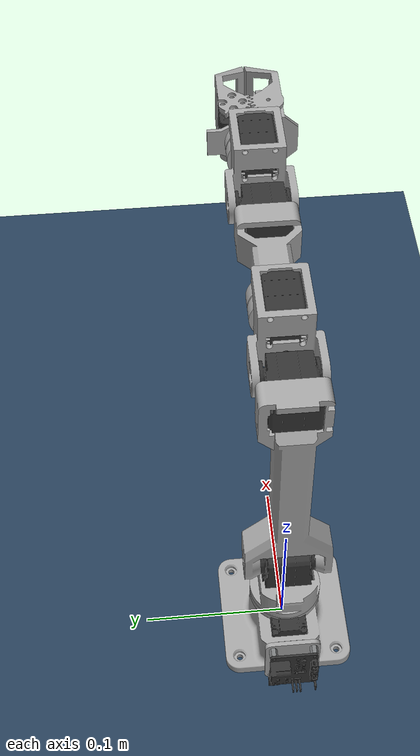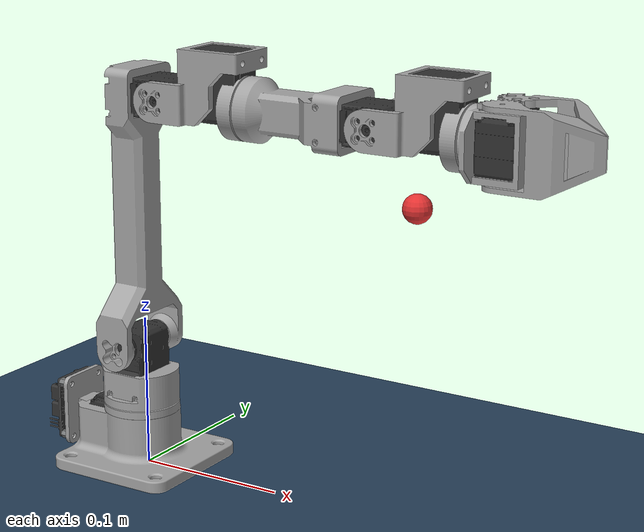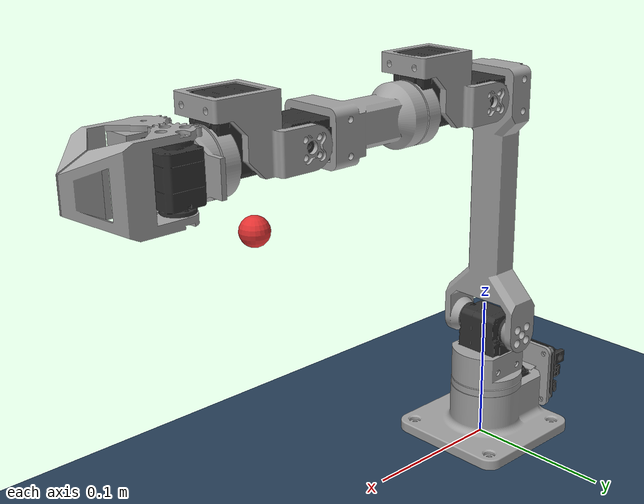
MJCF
<mujoco model="scene">
    <include file="robot.xml" />

    <visual>
        <headlight diffuse="0.6 0.6 0.6" ambient="0.3 0.3 0.3" specular="0 0 0" />
        <rgba haze="0.15 0.25 0.35 1" />
        <global azimuth="160" elevation="-20" />
    </visual>

    <asset>
        <texture type="skybox" builtin="gradient" rgb1="0.3 0.5 0.7" rgb2="0 0 0" width="512"
            height="3072" />
        <texture type="2d" name="groundplane" builtin="checker" mark="edge" rgb1="0.2 0.3 0.4"
            rgb2="0.1 0.2 0.3"
            markrgb="0.8 0.8 0.8" width="300" height="300" />
        <material name="groundplane" texture="groundplane" texuniform="true" texrepeat="5 5"
            reflectance="0.2" />
    </asset>

    <worldbody>
        <light pos="0 0 3.5" dir="0 0 -1" directional="true" />
        <geom name="floor" size="0 0 0.05" pos="0 0 0" type="plane" material="groundplane" />

        <!-- Target -->
		<body name="target" pos="0.2 0.0 0.2" gravcomp="1">
			<joint armature="0" axis="1 0 0" damping="0" limited="true" name="target_x" pos="0 0 0" range="-.27 .27" ref="0" stiffness="0" type="slide"/>
			<joint armature="0" axis="0 1 0" damping="0" limited="true" name="target_y" pos="0 0 0" range="-.27 .27" ref="0" stiffness="0" type="slide"/>
            <joint armature="0" axis="0 0 1" damping="0" limited="true" name="target_z" pos="0 0 0" range="-.27 .27" ref="0" stiffness="0" type="slide"/>
			<geom conaffinity="0" contype="0" name="target" pos="0 0 0" rgba="0.9 0.2 0.2 1" size=".009" type="sphere"/>
		</body>
    </worldbody>
</mujoco>

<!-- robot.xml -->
<!-- Generated using onshape-to-robot -->
<!-- Onshape https://cad.onshape.com/documents/5ed8cfb61595789d024e1257/w/f4ea8e71bb659e73bc33b59e/e/9b60ff3bf030ff376f436c83 -->
<mujoco model="apto_arm">
  <compiler angle="radian" meshdir="meshes" autolimits="true"/>
  <default>
    <default class="apto_arm">
      <joint frictionloss="0.1" armature="0.005"/>
      <position kp="50" dampratio="1"/>
      <default class="visual">
        <geom type="mesh" contype="0" conaffinity="0" group="2"/>
      </default>
      <default class="collision">
        <geom group="3"/>
      </default>
    </default>
  </default>
  <worldbody>
    <!-- Link base -->
    <body name="base" pos="0 0 0" quat="1 0 0 0" childclass="apto_arm">
      <inertial pos="-0.0103642 2.52464e-07 0.017584" mass="0.203812" fullinertia="0.000103332 0.000141349 0.000178463 -7.28984e-09 1.49851e-05 -6.94405e-09"/>
      <!-- Part abstandzbolzen_stahl_verzinkt_i_i_m2_5___ettinger___5_02_061__m2_5x6 -->
      <geom type="mesh" class="visual" pos="-0.0615496 0.014 0.0483" quat="0.707107 0 0 -0.707107" mesh="abstandzbolzen_stahl_verzinkt_i_i_m2_5___ettinger___5_02_061__m2_5x6" material="abstandzbolzen_stahl_verzinkt_i_i_m2_5___ettinger___5_02_061__m2_5x6_material"/>
      <geom type="mesh" class="collision" pos="-0.0615496 0.014 0.0483" quat="0.707107 0 0 -0.707107" mesh="abstandzbolzen_stahl_verzinkt_i_i_m2_5___ettinger___5_02_061__m2_5x6" material="abstandzbolzen_stahl_verzinkt_i_i_m2_5___ettinger___5_02_061__m2_5x6_material"/>
      <!-- Part simplified_part -->
      <geom type="mesh" class="visual" pos="-0.0300996 1.04083e-17 0.0336" quat="0 0 -0.707107 -0.707107" mesh="simplified_part" material="simplified_part_material"/>
      <geom type="mesh" class="collision" pos="-0.0300996 1.04083e-17 0.0336" quat="0 0 -0.707107 -0.707107" mesh="simplified_part" material="simplified_part_material"/>
      <!-- Part pcbframe -->
      <geom type="mesh" class="visual" pos="-0.0525496 0.019 0.0063" quat="0.707107 0 0 -0.707107" mesh="pcbframe" material="pcbframe_material"/>
      <geom type="mesh" class="collision" pos="-0.0525496 0.019 0.0063" quat="0.707107 0 0 -0.707107" mesh="pcbframe" material="pcbframe_material"/>
      <!-- Part basethrust -->
      <geom type="mesh" class="visual" pos="-0.00459957 1.04083e-17 0.0375" quat="1 -0 -0 -0" mesh="basethrust" material="basethrust_material"/>
      <geom type="mesh" class="collision" pos="-0.00459957 1.04083e-17 0.0375" quat="1 -0 -0 -0" mesh="basethrust" material="basethrust_material"/>
      <!-- Part simplified_part_2 -->
      <geom type="mesh" class="visual" pos="-0.0631496 0.0165 0.0508" quat="5.19201e-17 -0.707107 0 0.707107" mesh="simplified_part__2" material="simplified_part__2_material"/>
      <geom type="mesh" class="collision" pos="-0.0631496 0.0165 0.0508" quat="5.19201e-17 -0.707107 0 0.707107" mesh="simplified_part__2" material="simplified_part__2_material"/>
      <!-- Part abstandzbolzen_stahl_verzinkt_i_i_m2_5___ettinger___5_02_061__m2_5x6_2 -->
      <geom type="mesh" class="visual" pos="-0.0615496 0.014 0.0113" quat="0.707107 0 0 -0.707107" mesh="abstandzbolzen_stahl_verzinkt_i_i_m2_5___ettinger___5_02_061__m2_5x6" material="abstandzbolzen_stahl_verzinkt_i_i_m2_5___ettinger___5_02_061__m2_5x6_material"/>
      <geom type="mesh" class="collision" pos="-0.0615496 0.014 0.0113" quat="0.707107 0 0 -0.707107" mesh="abstandzbolzen_stahl_verzinkt_i_i_m2_5___ettinger___5_02_061__m2_5x6" material="abstandzbolzen_stahl_verzinkt_i_i_m2_5___ettinger___5_02_061__m2_5x6_material"/>
      <!-- Part abstandzbolzen_stahl_verzinkt_i_i_m2_5___ettinger___5_02_061__m2_5x6_3 -->
      <geom type="mesh" class="visual" pos="-0.0615496 -0.014 0.0483" quat="0.707107 0 0 -0.707107" mesh="abstandzbolzen_stahl_verzinkt_i_i_m2_5___ettinger___5_02_061__m2_5x6" material="abstandzbolzen_stahl_verzinkt_i_i_m2_5___ettinger___5_02_061__m2_5x6_material"/>
      <geom type="mesh" class="collision" pos="-0.0615496 -0.014 0.0483" quat="0.707107 0 0 -0.707107" mesh="abstandzbolzen_stahl_verzinkt_i_i_m2_5___ettinger___5_02_061__m2_5x6" material="abstandzbolzen_stahl_verzinkt_i_i_m2_5___ettinger___5_02_061__m2_5x6_material"/>
      <!-- Part base -->
      <geom type="mesh" class="visual" pos="-0.0480496 -0.045 0" quat="1 0 0 0" mesh="base" material="base_material"/>
      <geom type="mesh" class="collision" pos="-0.0480496 -0.045 0" quat="1 0 0 0" mesh="base" material="base_material"/>
      <!-- Part abstandzbolzen_stahl_verzinkt_i_i_m2_5___ettinger___5_02_061__m2_5x6_4 -->
      <geom type="mesh" class="visual" pos="-0.0615496 -0.014 0.0113" quat="0.707107 0 0 -0.707107" mesh="abstandzbolzen_stahl_verzinkt_i_i_m2_5___ettinger___5_02_061__m2_5x6" material="abstandzbolzen_stahl_verzinkt_i_i_m2_5___ettinger___5_02_061__m2_5x6_material"/>
      <geom type="mesh" class="collision" pos="-0.0615496 -0.014 0.0113" quat="0.707107 0 0 -0.707107" mesh="abstandzbolzen_stahl_verzinkt_i_i_m2_5___ettinger___5_02_061__m2_5x6" material="abstandzbolzen_stahl_verzinkt_i_i_m2_5___ettinger___5_02_061__m2_5x6_material"/>
      <!-- Link baseframe -->
      <body name="baseframe" pos="-0.00459957 1.12999e-17 0.0433" quat="0 1 0 0">
        <!-- Joint from base to baseframe -->
        <joint axis="0 0 1" name="1" type="hinge" range="-1.3962634015954636 1.3962634015954636"/>
        <inertial pos="-0.000226919 0.000173064 -0.0212401" mass="0.0858067" fullinertia="2.59297e-05 2.72242e-05 1.95017e-05 -8.51563e-10 -1.54207e-07 4.58121e-08"/>
        <!-- Part simplified_part_3 -->
        <geom type="mesh" class="visual" pos="-2.42861e-17 -0.009025 -0.0145" quat="9.62066e-17 0.707107 -0 0.707107" mesh="simplified_part__3" material="simplified_part__3_material"/>
        <geom type="mesh" class="collision" pos="-2.42861e-17 -0.009025 -0.0145" quat="9.62066e-17 0.707107 -0 0.707107" mesh="simplified_part__3" material="simplified_part__3_material"/>
        <!-- Part baseframe -->
        <geom type="mesh" class="visual" pos="0 2.44929e-19 0" quat="0 1 0 0" mesh="baseframe" material="baseframe_material"/>
        <geom type="mesh" class="collision" pos="0 2.44929e-19 0" quat="0 1 0 0" mesh="baseframe" material="baseframe_material"/>
        <!-- Link link1 -->
        <body name="link1" pos="-2.68882e-17 -0.019 -0.04" quat="0.5 -0.5 0.5 0.5">
          <!-- Joint from baseframe to link1 -->
          <joint axis="0 0 1" name="2" type="hinge" range="-1.3962634015954636 1.3962634015954636"/>
          <inertial pos="0.107494 -0.00536826 0.018862" mass="0.190598" fullinertia="5.31201e-05 0.000640799 0.00064269 5.90405e-05 -9.58969e-07 2.5701e-07"/>
          <!-- Part link1 -->
          <geom type="mesh" class="visual" pos="0.0414998 -0.0125 0.0315" quat="0.707107 -0.707107 0 0" mesh="link1" material="link1_material"/>
          <geom type="mesh" class="collision" pos="0.0414998 -0.0125 0.0315" quat="0.707107 -0.707107 0 0" mesh="link1" material="link1_material"/>
          <!-- Part simplified_part_4 -->
          <geom type="mesh" class="visual" pos="0.16525 -0.00475 0.009975" quat="0.5 -0.5 -0.5 0.5" mesh="simplified_part__3" material="simplified_part__3_material"/>
          <geom type="mesh" class="collision" pos="0.16525 -0.00475 0.009975" quat="0.5 -0.5 -0.5 0.5" mesh="simplified_part__3" material="simplified_part__3_material"/>
          <!-- Link mframe -->
          <body name="mframe" pos="0.16525 -0.03025 0.00025" quat="0.707107 -0 1.60723e-16 -0.707107">
            <!-- Joint from link1 to mframe -->
            <joint axis="0 0 1" name="3" type="hinge" range="-1.3962634015954636 1.3962634015954636"/>
            <inertial pos="0.035841 0.00947294 0.0187521" mass="0.092061" fullinertia="2.92644e-05 3.04887e-05 3.62e-05 -1.75052e-06 1.77599e-09 -2.52917e-09"/>
            <!-- Part mframe -->
            <geom type="mesh" class="visual" pos="0.0225 -0.0125 0.0425" quat="0.707107 -0.707107 0 5.04921e-62" mesh="mframe" material="mframe_material"/>
            <geom type="mesh" class="collision" pos="0.0225 -0.0125 0.0425" quat="0.707107 -0.707107 0 5.04921e-62" mesh="mframe" material="mframe_material"/>
            <!-- Part mthrust -->
            <geom type="mesh" class="visual" pos="0.04675 -0.0018 0.01875" quat="9.0189e-29 -0.707107 -0 -0.707107" mesh="mthrust" material="mthrust_material"/>
            <geom type="mesh" class="collision" pos="0.04675 -0.0018 0.01875" quat="9.0189e-29 -0.707107 -0 -0.707107" mesh="mthrust" material="mthrust_material"/>
            <!-- Part simplified_part_5 -->
            <geom type="mesh" class="visual" pos="0.04835 0.0237 0.01875" quat="4.32978e-17 -0.707107 -0.707107 4.32978e-17" mesh="simplified_part" material="simplified_part_material"/>
            <geom type="mesh" class="collision" pos="0.04835 0.0237 0.01875" quat="4.32978e-17 -0.707107 -0.707107 4.32978e-17" mesh="simplified_part" material="simplified_part_material"/>
            <!-- Link link2 -->
            <body name="link2" pos="0.05795 -0.0018 0.01875" quat="1.55532e-28 -0.707107 0 0.707107">
              <!-- Joint from mframe to link2 -->
              <joint axis="0 0 1" name="4" type="hinge" range="-1.3962634015954636 1.3962634015954636"/>
              <inertial pos="0.000330862 -7.32053e-05 -0.0605309" mass="0.0963563" fullinertia="9.44484e-05 9.80461e-05 1.88413e-05 -1.33669e-09 4.75465e-07 -1.37026e-07"/>
              <!-- Part link2 -->
              <geom type="mesh" class="visual" pos="0 0 0" quat="0.5 0.5 0.5 -0.5" mesh="link2" material="link2_material"/>
              <geom type="mesh" class="collision" pos="0 0 0" quat="0.5 0.5 0.5 -0.5" mesh="link2" material="link2_material"/>
              <!-- Part simplified_part_6 -->
              <geom type="mesh" class="visual" pos="0.0096 -0.000125 -0.06725" quat="0.5 -0.5 -0.5 -0.5" mesh="simplified_part__3" material="simplified_part__3_material"/>
              <geom type="mesh" class="collision" pos="0.0096 -0.000125 -0.06725" quat="0.5 -0.5 -0.5 -0.5" mesh="simplified_part__3" material="simplified_part__3_material"/>
              <!-- Link mframe_2 -->
              <body name="mframe_2" pos="0.019325 -0.000125 -0.09275" quat="4.41589e-17 -0.707107 -0 0.707107">
                <!-- Joint from link2 to mframe_2 -->
                <joint axis="0 0 1" name="5" type="hinge" range="-1.3962634015954636 1.3962634015954636"/>
                <inertial pos="0.035841 0.00947294 0.0187521" mass="0.092061" fullinertia="2.92644e-05 3.04887e-05 3.62e-05 -1.75052e-06 1.77599e-09 -2.52917e-09"/>
                <!-- Part mframe_2 -->
                <geom type="mesh" class="visual" pos="0.0225 -0.0125 0.0425" quat="0.707107 -0.707107 0 -1.7335e-43" mesh="mframe" material="mframe_material"/>
                <geom type="mesh" class="collision" pos="0.0225 -0.0125 0.0425" quat="0.707107 -0.707107 0 -1.7335e-43" mesh="mframe" material="mframe_material"/>
                <!-- Part simplified_part_7 -->
                <geom type="mesh" class="visual" pos="0.04835 0.0237 0.01875" quat="5.60399e-17 -0.707107 -0.707107 4.29078e-17" mesh="simplified_part" material="simplified_part_material"/>
                <geom type="mesh" class="collision" pos="0.04835 0.0237 0.01875" quat="5.60399e-17 -0.707107 -0.707107 4.29078e-17" mesh="simplified_part" material="simplified_part_material"/>
                <!-- Part mthrust_2 -->
                <geom type="mesh" class="visual" pos="0.04675 -0.0018 0.01875" quat="1.87354e-30 0.707107 0 0.707107" mesh="mthrust" material="mthrust_material"/>
                <geom type="mesh" class="collision" pos="0.04675 -0.0018 0.01875" quat="1.87354e-30 0.707107 0 0.707107" mesh="mthrust" material="mthrust_material"/>
                <!-- Link gripperframe -->
                <body name="gripperframe" pos="0.05795 -0.0018 0.01875" quat="1.72563e-30 0.707107 0 -0.707107">
                  <!-- Joint from mframe_2 to gripperframe -->
                  <joint axis="0 0 1" name="6" type="hinge" range="-1.3962634015954636 1.3962634015954636"/>
                  <inertial pos="-0.00103237 -0.000347468 -0.0198696" mass="0.0797234" fullinertia="1.65788e-05 2.222e-05 2.2374e-05 -6.36702e-08 -5.37145e-07 -9.81503e-08"/>
                  <!-- Part gripperframe -->
                  <geom type="mesh" class="visual" pos="-0.0225 0.02025 -0.008" quat="0 1 0 0" mesh="gripperframe" material="gripperframe_material"/>
                  <geom type="mesh" class="collision" pos="-0.0225 0.02025 -0.008" quat="0 1 0 0" mesh="gripperframe" material="gripperframe_material"/>
                  <!-- Part simplified_part_8 -->
                  <geom type="mesh" class="visual" pos="-0.0127 -0.0096 -0.0235" quat="1.38778e-16 -2.471e-16 2.22045e-16 1" mesh="simplified_part__3" material="simplified_part__3_material"/>
                  <geom type="mesh" class="collision" pos="-0.0127 -0.0096 -0.0235" quat="1.38778e-16 -2.471e-16 2.22045e-16 1" mesh="simplified_part__3" material="simplified_part__3_material"/>
                  <!-- Link gripper1 -->
                  <body name="gripper1" pos="0.0128 -0.019575 -0.0235" quat="0.5 -0.5 0.5 0.5">
                    <!-- Joint from gripperframe to gripper1 -->
                    <joint axis="0 0 1" name="gripper" type="hinge" range="-1.3962634015954636 0.0"/>
                    <inertial pos="0.0252127 -0.00082146 0.0196742" mass="0.015224" fullinertia="4.71998e-06 8.64173e-06 5.43151e-06 -5.79516e-07 -7.56362e-08 6.68232e-08"/>
                    <!-- Part gripper1 -->
                    <geom type="mesh" class="visual" pos="5.55112e-17 2.25514e-17 0.043625" quat="0 1 0 0" mesh="gripper1" material="gripper1_material"/>
                    <geom type="mesh" class="collision" pos="5.55112e-17 2.25514e-17 0.043625" quat="0 1 0 0" mesh="gripper1" material="gripper1_material"/>
                  </body>
                  <!-- Link gripper2 -->
                  <body name="gripper2" pos="-0.0125 -0.02095 -0.0235" quat="0.5 -0.5 0.5 0.5">
                    <!-- Joint from gripperframe to gripper2 -->
                    <joint axis="0 0 1" name="gripper2" type="hinge" range="0.0 1.3962634015954636"/>
                    <inertial pos="0.027316 0.000770364 0.0204733" mass="0.0138224" fullinertia="4.19581e-06 7.4035e-06 4.63232e-06 5.90387e-07 -2.34226e-07 -3.40101e-08"/>
                    <!-- Part gripper2 -->
                    <geom type="mesh" class="visual" pos="0 0 -0.003" quat="1 0 2.22045e-16 0" mesh="gripper2" material="gripper2_material"/>
                    <geom type="mesh" class="collision" pos="0 0 -0.003" quat="1 0 2.22045e-16 0" mesh="gripper2" material="gripper2_material"/>
                  </body>
                </body>
              </body>
            </body>
          </body>
        </body>
      </body>
    </body>
  </worldbody>
  <asset>
    <mesh file="pcbframe.stl"/>
    <mesh file="basethrust.stl"/>
    <mesh file="simplified_part__2.stl"/>
    <mesh file="simplified_part.stl"/>
    <mesh file="base.stl"/>
    <mesh file="gripperframe.stl"/>
    <mesh file="baseframe.stl"/>
    <mesh file="abstandzbolzen_stahl_verzinkt_i_i_m2_5___ettinger___5_02_061__m2_5x6.stl"/>
    <mesh file="mframe.stl"/>
    <mesh file="mthrust.stl"/>
    <mesh file="link1.stl"/>
    <mesh file="gripper1.stl"/>
    <mesh file="simplified_part__3.stl"/>
    <mesh file="gripper2.stl"/>
    <mesh file="link2.stl"/>
    <material name="abstandzbolzen_stahl_verzinkt_i_i_m2_5___ettinger___5_02_061__m2_5x6_material" rgba="0.482353 0.490196 0.494118 1"/>
    <material name="simplified_part_material" rgba="0.196078 0.196078 0.196078 1"/>
    <material name="pcbframe_material" rgba="0.647059 0.647059 0.647059 1"/>
    <material name="basethrust_material" rgba="0.647059 0.647059 0.647059 1"/>
    <material name="simplified_part__2_material" rgba="0.196078 0.196078 0.196078 1"/>
    <material name="base_material" rgba="0.647059 0.647059 0.647059 1"/>
    <material name="simplified_part__3_material" rgba="0.196078 0.196078 0.196078 1"/>
    <material name="baseframe_material" rgba="0.647059 0.647059 0.647059 1"/>
    <material name="link1_material" rgba="0.647059 0.647059 0.647059 1"/>
    <material name="mframe_material" rgba="0.647059 0.647059 0.647059 1"/>
    <material name="mthrust_material" rgba="0.647059 0.647059 0.647059 1"/>
    <material name="link2_material" rgba="0.647059 0.647059 0.647059 1"/>
    <material name="gripperframe_material" rgba="0.647059 0.647059 0.647059 1"/>
    <material name="gripper1_material" rgba="0.647059 0.647059 0.647059 1"/>
    <material name="gripper2_material" rgba="0.647059 0.647059 0.647059 1"/>
  </asset>
  <actuator>
    <position class="apto_arm" name="1" joint="1" inheritrange="1"/>
    <position class="apto_arm" name="2" joint="2" inheritrange="1"/>
    <position class="apto_arm" name="3" joint="3" inheritrange="1"/>
    <position class="apto_arm" name="4" joint="4" inheritrange="1"/>
    <position class="apto_arm" name="5" joint="5" inheritrange="1"/>
    <position class="apto_arm" name="6" joint="6" inheritrange="1"/>
    <position class="apto_arm" name="gripper" joint="gripper" inheritrange="1"/>
  </actuator>
  <equality>
    <joint joint1="gripper2" joint2="gripper" polycoef="0 -1.0 0 0 0"/>
  </equality>
</mujoco>
